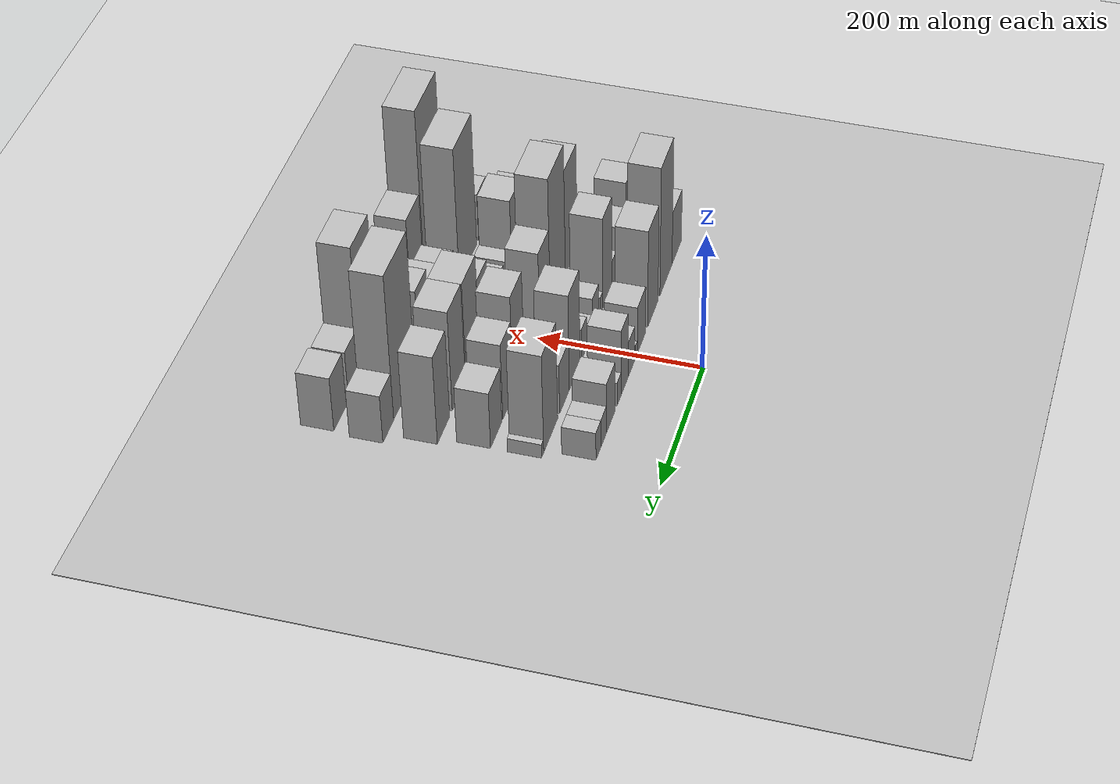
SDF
<sdf version="1.6">
 <world name="default">
  <include><name>ground_plane_1</name><uri>model://HANNAS_ground_plane</uri></include>
  <include>
   <name>ground_plane_2</name>
   <uri>model://HANNAS_ground_plane</uri>
   <pose>100 0 0  0 0 0</pose>
  </include>
  <model name="building_21">
   <static>1</static>
   <pose>100.0000 -192.4322 0 0.000000 0.000000 0.000000</pose>
   <link name="link">
    <pose>0 0 40.50 0 0 0</pose>
    <collision name="collision"><geometry><box><size>40.0000 46.7620 81.0000</size></box></geometry></collision>
    <visual name="visual">
     <cast_shadows>0</cast_shadows>
     <geometry><box><size>40.0000 46.7620 81.0000</size></box></geometry>
     <material>
      <script>
       <uri>model://HANNAS_wall/materials/scripts</uri>
       <uri>model://HANNAS_wall/materials/textures</uri>
       <name>vrc/HANNAS_wall</name>
      </script>
     </material>
    </visual>
   </link>
  </model>
  <model name="building_22">
   <static>1</static>
   <pose>100.0000 -139.3016 0 0.000000 0.000000 0.000000</pose>
   <link name="link">
    <pose>0 0 97.50 0 0 0</pose>
    <collision name="collision"><geometry><box><size>40.0000 59.4992 195.0000</size></box></geometry></collision>
    <visual name="visual">
     <cast_shadows>0</cast_shadows>
     <geometry><box><size>40.0000 59.4992 195.0000</size></box></geometry>
     <material>
      <script>
       <uri>model://HANNAS_wall/materials/scripts</uri>
       <uri>model://HANNAS_wall/materials/textures</uri>
       <name>vrc/HANNAS_wall</name>
      </script>
     </material>
    </visual>
   </link>
  </model>
  <model name="building_23">
   <static>1</static>
   <pose>100.0000 -75.8949 0 0.000000 0.000000 0.000000</pose>
   <link name="link">
    <pose>0 0 73.50 0 0 0</pose>
    <collision name="collision"><geometry><box><size>40.0000 49.3142 147.0000</size></box></geometry></collision>
    <visual name="visual">
     <cast_shadows>0</cast_shadows>
     <geometry><box><size>40.0000 49.3142 147.0000</size></box></geometry>
     <material>
      <script>
       <uri>model://HANNAS_wall/materials/scripts</uri>
       <uri>model://HANNAS_wall/materials/textures</uri>
       <name>vrc/HANNAS_wall</name>
      </script>
     </material>
    </visual>
   </link>
  </model>
  <model name="building_24">
   <static>1</static>
   <pose>100.0000 -21.9585 0 0.000000 0.000000 0.000000</pose>
   <link name="link">
    <pose>0 0 36.00 0 0 0</pose>
    <collision name="collision"><geometry><box><size>40.0000 38.5585 72.0000</size></box></geometry></collision>
    <visual name="visual">
     <cast_shadows>0</cast_shadows>
     <geometry><box><size>40.0000 38.5585 72.0000</size></box></geometry>
     <material>
      <script>
       <uri>model://HANNAS_wall/materials/scripts</uri>
       <uri>model://HANNAS_wall/materials/textures</uri>
       <name>vrc/HANNAS_wall</name>
      </script>
     </material>
    </visual>
   </link>
  </model>
  <model name="building_25">
   <static>1</static>
   <pose>100.0000 1.7301 0 0.000000 0.000000 0.000000</pose>
   <link name="link">
    <pose>0 0 10.50 0 0 0</pose>
    <collision name="collision"><geometry><box><size>40.0000 8.8189 21.0000</size></box></geometry></collision>
    <visual name="visual">
     <cast_shadows>0</cast_shadows>
     <geometry><box><size>40.0000 8.8189 21.0000</size></box></geometry>
     <material>
      <script>
       <uri>model://HANNAS_wall/materials/scripts</uri>
       <uri>model://HANNAS_wall/materials/textures</uri>
       <name>vrc/HANNAS_wall</name>
      </script>
     </material>
    </visual>
   </link>
  </model>
  <model name="building_26">
   <static>1</static>
   <pose>100.0000 24.4801 0 0.000000 0.000000 0.000000</pose>
   <link name="link">
    <pose>0 0 27.00 0 0 0</pose>
    <collision name="collision"><geometry><box><size>40.0000 30.6811 54.0000</size></box></geometry></collision>
    <visual name="visual">
     <cast_shadows>0</cast_shadows>
     <geometry><box><size>40.0000 30.6811 54.0000</size></box></geometry>
     <material>
      <script>
       <uri>model://HANNAS_wall/materials/scripts</uri>
       <uri>model://HANNAS_wall/materials/textures</uri>
       <name>vrc/HANNAS_wall</name>
      </script>
     </material>
    </visual>
   </link>
  </model>
  <model name="building_27">
   <static>1</static>
   <pose>100.0000 55.2419 0 0.000000 0.000000 0.000000</pose>
   <link name="link">
    <pose>0 0 49.50 0 0 0</pose>
    <collision name="collision"><geometry><box><size>40.0000 30.8425 99.0000</size></box></geometry></collision>
    <visual name="visual">
     <cast_shadows>0</cast_shadows>
     <geometry><box><size>40.0000 30.8425 99.0000</size></box></geometry>
     <material>
      <script>
       <uri>model://HANNAS_wall/materials/scripts</uri>
       <uri>model://HANNAS_wall/materials/textures</uri>
       <name>vrc/HANNAS_wall</name>
      </script>
     </material>
    </visual>
   </link>
  </model>
  <model name="building_28">
   <static>1</static>
   <pose>100.0000 79.9134 0 0.000000 0.000000 0.000000</pose>
   <link name="link">
    <pose>0 0 18.00 0 0 0</pose>
    <collision name="collision"><geometry><box><size>40.0000 18.5005 36.0000</size></box></geometry></collision>
    <visual name="visual">
     <cast_shadows>0</cast_shadows>
     <geometry><box><size>40.0000 18.5005 36.0000</size></box></geometry>
     <material>
      <script>
       <uri>model://HANNAS_wall/materials/scripts</uri>
       <uri>model://HANNAS_wall/materials/textures</uri>
       <name>vrc/HANNAS_wall</name>
      </script>
     </material>
    </visual>
   </link>
  </model>
  <model name="building_29">
   <static>1</static>
   <pose>100.0000 116.2037 0 0.000000 0.000000 0.000000</pose>
   <link name="link">
    <pose>0 0 37.50 0 0 0</pose>
    <collision name="collision"><geometry><box><size>40.0000 38.0802 75.0000</size></box></geometry></collision>
    <visual name="visual">
     <cast_shadows>0</cast_shadows>
     <geometry><box><size>40.0000 38.0802 75.0000</size></box></geometry>
     <material>
      <script>
       <uri>model://HANNAS_wall/materials/scripts</uri>
       <uri>model://HANNAS_wall/materials/textures</uri>
       <name>vrc/HANNAS_wall</name>
      </script>
     </material>
    </visual>
   </link>
  </model>
  <model name="building_30">
   <static>1</static>
   <pose>100.0000 147.2831 0 0.000000 0.000000 0.000000</pose>
   <link name="link">
    <pose>0 0 21.00 0 0 0</pose>
    <collision name="collision"><geometry><box><size>40.0000 24.0786 42.0000</size></box></geometry></collision>
    <visual name="visual">
     <cast_shadows>0</cast_shadows>
     <geometry><box><size>40.0000 24.0786 42.0000</size></box></geometry>
     <material>
      <script>
       <uri>model://HANNAS_wall/materials/scripts</uri>
       <uri>model://HANNAS_wall/materials/textures</uri>
       <name>vrc/HANNAS_wall</name>
      </script>
     </material>
    </visual>
   </link>
  </model>
  <model name="building_31">
   <static>1</static>
   <pose>100.0000 170.0176 0 0.000000 0.000000 0.000000</pose>
   <link name="link">
    <pose>0 0 21.00 0 0 0</pose>
    <collision name="collision"><geometry><box><size>40.0000 21.3902 42.0000</size></box></geometry></collision>
    <visual name="visual">
     <cast_shadows>0</cast_shadows>
     <geometry><box><size>40.0000 21.3902 42.0000</size></box></geometry>
     <material>
      <script>
       <uri>model://HANNAS_wall/materials/scripts</uri>
       <uri>model://HANNAS_wall/materials/textures</uri>
       <name>vrc/HANNAS_wall</name>
      </script>
     </material>
    </visual>
   </link>
  </model>
  <model name="building_76">
   <static>1</static>
   <pose>160.0000 -196.6930 0 0.000000 0.000000 0.000000</pose>
   <link name="link">
    <pose>0 0 54.00 0 0 0</pose>
    <collision name="collision"><geometry><box><size>40.0000 37.9832 108.0000</size></box></geometry></collision>
    <visual name="visual">
     <cast_shadows>0</cast_shadows>
     <geometry><box><size>40.0000 37.9832 108.0000</size></box></geometry>
     <material>
      <script>
       <uri>model://HANNAS_wall/materials/scripts</uri>
       <uri>model://HANNAS_wall/materials/textures</uri>
       <name>vrc/HANNAS_wall</name>
      </script>
     </material>
    </visual>
   </link>
  </model>
  <model name="building_77">
   <static>1</static>
   <pose>160.0000 -152.7159 0 0.000000 0.000000 0.000000</pose>
   <link name="link">
    <pose>0 0 37.50 0 0 0</pose>
    <collision name="collision"><geometry><box><size>40.0000 39.9711 75.0000</size></box></geometry></collision>
    <visual name="visual">
     <cast_shadows>0</cast_shadows>
     <geometry><box><size>40.0000 39.9711 75.0000</size></box></geometry>
     <material>
      <script>
       <uri>model://HANNAS_wall/materials/scripts</uri>
       <uri>model://HANNAS_wall/materials/textures</uri>
       <name>vrc/HANNAS_wall</name>
      </script>
     </material>
    </visual>
   </link>
  </model>
  <model name="building_78">
   <static>1</static>
   <pose>160.0000 -122.4921 0 0.000000 0.000000 0.000000</pose>
   <link name="link">
    <pose>0 0 19.50 0 0 0</pose>
    <collision name="collision"><geometry><box><size>40.0000 20.4765 39.0000</size></box></geometry></collision>
    <visual name="visual">
     <cast_shadows>0</cast_shadows>
     <geometry><box><size>40.0000 20.4765 39.0000</size></box></geometry>
     <material>
      <script>
       <uri>model://HANNAS_wall/materials/scripts</uri>
       <uri>model://HANNAS_wall/materials/textures</uri>
       <name>vrc/HANNAS_wall</name>
      </script>
     </material>
    </visual>
   </link>
  </model>
  <model name="building_79">
   <static>1</static>
   <pose>160.0000 -91.2231 0 0.000000 0.000000 0.000000</pose>
   <link name="link">
    <pose>0 0 69.00 0 0 0</pose>
    <collision name="collision"><geometry><box><size>40.0000 42.0614 138.0000</size></box></geometry></collision>
    <visual name="visual">
     <cast_shadows>0</cast_shadows>
     <geometry><box><size>40.0000 42.0614 138.0000</size></box></geometry>
     <material>
      <script>
       <uri>model://HANNAS_wall/materials/scripts</uri>
       <uri>model://HANNAS_wall/materials/textures</uri>
       <name>vrc/HANNAS_wall</name>
      </script>
     </material>
    </visual>
   </link>
  </model>
  <model name="building_80">
   <static>1</static>
   <pose>160.0000 -64.3996 0 0.000000 0.000000 0.000000</pose>
   <link name="link">
    <pose>0 0 13.50 0 0 0</pose>
    <collision name="collision"><geometry><box><size>40.0000 11.5857 27.0000</size></box></geometry></collision>
    <visual name="visual">
     <cast_shadows>0</cast_shadows>
     <geometry><box><size>40.0000 11.5857 27.0000</size></box></geometry>
     <material>
      <script>
       <uri>model://HANNAS_wall/materials/scripts</uri>
       <uri>model://HANNAS_wall/materials/textures</uri>
       <name>vrc/HANNAS_wall</name>
      </script>
     </material>
    </visual>
   </link>
  </model>
  <model name="building_81">
   <static>1</static>
   <pose>160.0000 -37.5981 0 0.000000 0.000000 0.000000</pose>
   <link name="link">
    <pose>0 0 27.00 0 0 0</pose>
    <collision name="collision"><geometry><box><size>40.0000 28.0174 54.0000</size></box></geometry></collision>
    <visual name="visual">
     <cast_shadows>0</cast_shadows>
     <geometry><box><size>40.0000 28.0174 54.0000</size></box></geometry>
     <material>
      <script>
       <uri>model://HANNAS_wall/materials/scripts</uri>
       <uri>model://HANNAS_wall/materials/textures</uri>
       <name>vrc/HANNAS_wall</name>
      </script>
     </material>
    </visual>
   </link>
  </model>
  <model name="building_82">
   <static>1</static>
   <pose>160.0000 -15.8726 0 0.000000 0.000000 0.000000</pose>
   <link name="link">
    <pose>0 0 15.00 0 0 0</pose>
    <collision name="collision"><geometry><box><size>40.0000 15.4336 30.0000</size></box></geometry></collision>
    <visual name="visual">
     <cast_shadows>0</cast_shadows>
     <geometry><box><size>40.0000 15.4336 30.0000</size></box></geometry>
     <material>
      <script>
       <uri>model://HANNAS_wall/materials/scripts</uri>
       <uri>model://HANNAS_wall/materials/textures</uri>
       <name>vrc/HANNAS_wall</name>
      </script>
     </material>
    </visual>
   </link>
  </model>
  <model name="building_83">
   <static>1</static>
   <pose>160.0000 13.0818 0 0.000000 0.000000 0.000000</pose>
   <link name="link">
    <pose>0 0 24.00 0 0 0</pose>
    <collision name="collision"><geometry><box><size>40.0000 24.4751 48.0000</size></box></geometry></collision>
    <visual name="visual">
     <cast_shadows>0</cast_shadows>
     <geometry><box><size>40.0000 24.4751 48.0000</size></box></geometry>
     <material>
      <script>
       <uri>model://HANNAS_wall/materials/scripts</uri>
       <uri>model://HANNAS_wall/materials/textures</uri>
       <name>vrc/HANNAS_wall</name>
      </script>
     </material>
    </visual>
   </link>
  </model>
  <model name="building_84">
   <static>1</static>
   <pose>160.0000 54.4491 0 0.000000 0.000000 0.000000</pose>
   <link name="link">
    <pose>0 0 72.00 0 0 0</pose>
    <collision name="collision"><geometry><box><size>40.0000 46.2595 144.0000</size></box></geometry></collision>
    <visual name="visual">
     <cast_shadows>0</cast_shadows>
     <geometry><box><size>40.0000 46.2595 144.0000</size></box></geometry>
     <material>
      <script>
       <uri>model://HANNAS_wall/materials/scripts</uri>
       <uri>model://HANNAS_wall/materials/textures</uri>
       <name>vrc/HANNAS_wall</name>
      </script>
     </material>
    </visual>
   </link>
  </model>
  <model name="building_85">
   <static>1</static>
   <pose>160.0000 98.1941 0 0.000000 0.000000 0.000000</pose>
   <link name="link">
    <pose>0 0 37.50 0 0 0</pose>
    <collision name="collision"><geometry><box><size>40.0000 41.2305 75.0000</size></box></geometry></collision>
    <visual name="visual">
     <cast_shadows>0</cast_shadows>
     <geometry><box><size>40.0000 41.2305 75.0000</size></box></geometry>
     <material>
      <script>
       <uri>model://HANNAS_wall/materials/scripts</uri>
       <uri>model://HANNAS_wall/materials/textures</uri>
       <name>vrc/HANNAS_wall</name>
      </script>
     </material>
    </visual>
   </link>
  </model>
  <model name="building_86">
   <static>1</static>
   <pose>160.0000 155.6884 0 0.000000 0.000000 0.000000</pose>
   <link name="link">
    <pose>0 0 73.50 0 0 0</pose>
    <collision name="collision"><geometry><box><size>40.0000 57.7581 147.0000</size></box></geometry></collision>
    <visual name="visual">
     <cast_shadows>0</cast_shadows>
     <geometry><box><size>40.0000 57.7581 147.0000</size></box></geometry>
     <material>
      <script>
       <uri>model://HANNAS_wall/materials/scripts</uri>
       <uri>model://HANNAS_wall/materials/textures</uri>
       <name>vrc/HANNAS_wall</name>
      </script>
     </material>
    </visual>
   </link>
  </model>
  <model name="building_87">
   <static>1</static>
   <pose>160.0000 188.8410 0 0.000000 0.000000 0.000000</pose>
   <link name="link">
    <pose>0 0 10.50 0 0 0</pose>
    <collision name="collision"><geometry><box><size>40.0000 8.5471 21.0000</size></box></geometry></collision>
    <visual name="visual">
     <cast_shadows>0</cast_shadows>
     <geometry><box><size>40.0000 8.5471 21.0000</size></box></geometry>
     <material>
      <script>
       <uri>model://HANNAS_wall/materials/scripts</uri>
       <uri>model://HANNAS_wall/materials/textures</uri>
       <name>vrc/HANNAS_wall</name>
      </script>
     </material>
    </visual>
   </link>
  </model>
  <model name="building_134">
   <static>1</static>
   <pose>220.0000 -193.3885 0 0.000000 0.000000 0.000000</pose>
   <link name="link">
    <pose>0 0 25.50 0 0 0</pose>
    <collision name="collision"><geometry><box><size>40.0000 30.3511 51.0000</size></box></geometry></collision>
    <visual name="visual">
     <cast_shadows>0</cast_shadows>
     <geometry><box><size>40.0000 30.3511 51.0000</size></box></geometry>
     <material>
      <script>
       <uri>model://HANNAS_wall/materials/scripts</uri>
       <uri>model://HANNAS_wall/materials/textures</uri>
       <name>vrc/HANNAS_wall</name>
      </script>
     </material>
    </visual>
   </link>
  </model>
  <model name="building_135">
   <static>1</static>
   <pose>220.0000 -175.0281 0 0.000000 0.000000 0.000000</pose>
   <link name="link">
    <pose>0 0 7.50 0 0 0</pose>
    <collision name="collision"><geometry><box><size>40.0000 6.3698 15.0000</size></box></geometry></collision>
    <visual name="visual">
     <cast_shadows>0</cast_shadows>
     <geometry><box><size>40.0000 6.3698 15.0000</size></box></geometry>
     <material>
      <script>
       <uri>model://HANNAS_wall/materials/scripts</uri>
       <uri>model://HANNAS_wall/materials/textures</uri>
       <name>vrc/HANNAS_wall</name>
      </script>
     </material>
    </visual>
   </link>
  </model>
  <model name="building_136">
   <static>1</static>
   <pose>220.0000 -145.3822 0 0.000000 0.000000 0.000000</pose>
   <link name="link">
    <pose>0 0 79.50 0 0 0</pose>
    <collision name="collision"><geometry><box><size>40.0000 52.9220 159.0000</size></box></geometry></collision>
    <visual name="visual">
     <cast_shadows>0</cast_shadows>
     <geometry><box><size>40.0000 52.9220 159.0000</size></box></geometry>
     <material>
      <script>
       <uri>model://HANNAS_wall/materials/scripts</uri>
       <uri>model://HANNAS_wall/materials/textures</uri>
       <name>vrc/HANNAS_wall</name>
      </script>
     </material>
    </visual>
   </link>
  </model>
  <model name="building_137">
   <static>1</static>
   <pose>220.0000 -85.6703 0 0.000000 0.000000 0.000000</pose>
   <link name="link">
    <pose>0 0 99.00 0 0 0</pose>
    <collision name="collision"><geometry><box><size>40.0000 66.5017 198.0000</size></box></geometry></collision>
    <visual name="visual">
     <cast_shadows>0</cast_shadows>
     <geometry><box><size>40.0000 66.5017 198.0000</size></box></geometry>
     <material>
      <script>
       <uri>model://HANNAS_wall/materials/scripts</uri>
       <uri>model://HANNAS_wall/materials/textures</uri>
       <name>vrc/HANNAS_wall</name>
      </script>
     </material>
    </visual>
   </link>
  </model>
  <model name="building_138">
   <static>1</static>
   <pose>220.0000 -29.9982 0 0.000000 0.000000 0.000000</pose>
   <link name="link">
    <pose>0 0 61.50 0 0 0</pose>
    <collision name="collision"><geometry><box><size>40.0000 44.8425 123.0000</size></box></geometry></collision>
    <visual name="visual">
     <cast_shadows>0</cast_shadows>
     <geometry><box><size>40.0000 44.8425 123.0000</size></box></geometry>
     <material>
      <script>
       <uri>model://HANNAS_wall/materials/scripts</uri>
       <uri>model://HANNAS_wall/materials/textures</uri>
       <name>vrc/HANNAS_wall</name>
      </script>
     </material>
    </visual>
   </link>
  </model>
  <model name="building_139">
   <static>1</static>
   <pose>220.0000 7.7298 0 0.000000 0.000000 0.000000</pose>
   <link name="link">
    <pose>0 0 13.50 0 0 0</pose>
    <collision name="collision"><geometry><box><size>40.0000 12.6136 27.0000</size></box></geometry></collision>
    <visual name="visual">
     <cast_shadows>0</cast_shadows>
     <geometry><box><size>40.0000 12.6136 27.0000</size></box></geometry>
     <material>
      <script>
       <uri>model://HANNAS_wall/materials/scripts</uri>
       <uri>model://HANNAS_wall/materials/textures</uri>
       <name>vrc/HANNAS_wall</name>
      </script>
     </material>
    </visual>
   </link>
  </model>
  <model name="building_140">
   <static>1</static>
   <pose>220.0000 18.9061 0 0.000000 0.000000 0.000000</pose>
   <link name="link">
    <pose>0 0 10.50 0 0 0</pose>
    <collision name="collision"><geometry><box><size>40.0000 9.7389 21.0000</size></box></geometry></collision>
    <visual name="visual">
     <cast_shadows>0</cast_shadows>
     <geometry><box><size>40.0000 9.7389 21.0000</size></box></geometry>
     <material>
      <script>
       <uri>model://HANNAS_wall/materials/scripts</uri>
       <uri>model://HANNAS_wall/materials/textures</uri>
       <name>vrc/HANNAS_wall</name>
      </script>
     </material>
    </visual>
   </link>
  </model>
  <model name="building_141">
   <static>1</static>
   <pose>220.0000 44.9950 0 0.000000 0.000000 0.000000</pose>
   <link name="link">
    <pose>0 0 21.00 0 0 0</pose>
    <collision name="collision"><geometry><box><size>40.0000 24.4390 42.0000</size></box></geometry></collision>
    <visual name="visual">
     <cast_shadows>0</cast_shadows>
     <geometry><box><size>40.0000 24.4390 42.0000</size></box></geometry>
     <material>
      <script>
       <uri>model://HANNAS_wall/materials/scripts</uri>
       <uri>model://HANNAS_wall/materials/textures</uri>
       <name>vrc/HANNAS_wall</name>
      </script>
     </material>
    </visual>
   </link>
  </model>
  <model name="building_142">
   <static>1</static>
   <pose>220.0000 80.0974 0 0.000000 0.000000 0.000000</pose>
   <link name="link">
    <pose>0 0 75.00 0 0 0</pose>
    <collision name="collision"><geometry><box><size>40.0000 45.7659 150.0000</size></box></geometry></collision>
    <visual name="visual">
     <cast_shadows>0</cast_shadows>
     <geometry><box><size>40.0000 45.7659 150.0000</size></box></geometry>
     <material>
      <script>
       <uri>model://HANNAS_wall/materials/scripts</uri>
       <uri>model://HANNAS_wall/materials/textures</uri>
       <name>vrc/HANNAS_wall</name>
      </script>
     </material>
    </visual>
   </link>
  </model>
  <model name="building_143">
   <static>1</static>
   <pose>220.0000 123.7399 0 0.000000 0.000000 0.000000</pose>
   <link name="link">
    <pose>0 0 57.00 0 0 0</pose>
    <collision name="collision"><geometry><box><size>40.0000 41.5192 114.0000</size></box></geometry></collision>
    <visual name="visual">
     <cast_shadows>0</cast_shadows>
     <geometry><box><size>40.0000 41.5192 114.0000</size></box></geometry>
     <material>
      <script>
       <uri>model://HANNAS_wall/materials/scripts</uri>
       <uri>model://HANNAS_wall/materials/textures</uri>
       <name>vrc/HANNAS_wall</name>
      </script>
     </material>
    </visual>
   </link>
  </model>
  <model name="building_144">
   <static>1</static>
   <pose>220.0000 170.6851 0 0.000000 0.000000 0.000000</pose>
   <link name="link">
    <pose>0 0 42.00 0 0 0</pose>
    <collision name="collision"><geometry><box><size>40.0000 44.3712 84.0000</size></box></geometry></collision>
    <visual name="visual">
     <cast_shadows>0</cast_shadows>
     <geometry><box><size>40.0000 44.3712 84.0000</size></box></geometry>
     <material>
      <script>
       <uri>model://HANNAS_wall/materials/scripts</uri>
       <uri>model://HANNAS_wall/materials/textures</uri>
       <name>vrc/HANNAS_wall</name>
      </script>
     </material>
    </visual>
   </link>
  </model>
  <model name="building_185">
   <static>1</static>
   <pose>280.0000 -162.9202 0 0.000000 0.000000 0.000000</pose>
   <link name="link">
    <pose>0 0 46.50 0 0 0</pose>
    <collision name="collision"><geometry><box><size>40.0000 32.3600 93.0000</size></box></geometry></collision>
    <visual name="visual">
     <cast_shadows>0</cast_shadows>
     <geometry><box><size>40.0000 32.3600 93.0000</size></box></geometry>
     <material>
      <script>
       <uri>model://HANNAS_wall/materials/scripts</uri>
       <uri>model://HANNAS_wall/materials/textures</uri>
       <name>vrc/HANNAS_wall</name>
      </script>
     </material>
    </visual>
   </link>
  </model>
  <model name="building_186">
   <static>1</static>
   <pose>280.0000 -117.2008 0 0.000000 0.000000 0.000000</pose>
   <link name="link">
    <pose>0 0 60.00 0 0 0</pose>
    <collision name="collision"><geometry><box><size>40.0000 45.0787 120.0000</size></box></geometry></collision>
    <visual name="visual">
     <cast_shadows>0</cast_shadows>
     <geometry><box><size>40.0000 45.0787 120.0000</size></box></geometry>
     <material>
      <script>
       <uri>model://HANNAS_wall/materials/scripts</uri>
       <uri>model://HANNAS_wall/materials/textures</uri>
       <name>vrc/HANNAS_wall</name>
      </script>
     </material>
    </visual>
   </link>
  </model>
  <model name="building_187">
   <static>1</static>
   <pose>280.0000 -83.3864 0 0.000000 0.000000 0.000000</pose>
   <link name="link">
    <pose>0 0 22.50 0 0 0</pose>
    <collision name="collision"><geometry><box><size>40.0000 22.5501 45.0000</size></box></geometry></collision>
    <visual name="visual">
     <cast_shadows>0</cast_shadows>
     <geometry><box><size>40.0000 22.5501 45.0000</size></box></geometry>
     <material>
      <script>
       <uri>model://HANNAS_wall/materials/scripts</uri>
       <uri>model://HANNAS_wall/materials/textures</uri>
       <name>vrc/HANNAS_wall</name>
      </script>
     </material>
    </visual>
   </link>
  </model>
  <model name="building_188">
   <static>1</static>
   <pose>280.0000 -50.0803 0 0.000000 0.000000 0.000000</pose>
   <link name="link">
    <pose>0 0 24.00 0 0 0</pose>
    <collision name="collision"><geometry><box><size>40.0000 24.0621 48.0000</size></box></geometry></collision>
    <visual name="visual">
     <cast_shadows>0</cast_shadows>
     <geometry><box><size>40.0000 24.0621 48.0000</size></box></geometry>
     <material>
      <script>
       <uri>model://HANNAS_wall/materials/scripts</uri>
       <uri>model://HANNAS_wall/materials/textures</uri>
       <name>vrc/HANNAS_wall</name>
      </script>
     </material>
    </visual>
   </link>
  </model>
  <model name="building_189">
   <static>1</static>
   <pose>280.0000 -16.7186 0 0.000000 0.000000 0.000000</pose>
   <link name="link">
    <pose>0 0 33.00 0 0 0</pose>
    <collision name="collision"><geometry><box><size>40.0000 34.6612 66.0000</size></box></geometry></collision>
    <visual name="visual">
     <cast_shadows>0</cast_shadows>
     <geometry><box><size>40.0000 34.6612 66.0000</size></box></geometry>
     <material>
      <script>
       <uri>model://HANNAS_wall/materials/scripts</uri>
       <uri>model://HANNAS_wall/materials/textures</uri>
       <name>vrc/HANNAS_wall</name>
      </script>
     </material>
    </visual>
   </link>
  </model>
  <model name="building_190">
   <static>1</static>
   <pose>280.0000 20.3184 0 0.000000 0.000000 0.000000</pose>
   <link name="link">
    <pose>0 0 54.00 0 0 0</pose>
    <collision name="collision"><geometry><box><size>40.0000 39.4128 108.0000</size></box></geometry></collision>
    <visual name="visual">
     <cast_shadows>0</cast_shadows>
     <geometry><box><size>40.0000 39.4128 108.0000</size></box></geometry>
     <material>
      <script>
       <uri>model://HANNAS_wall/materials/scripts</uri>
       <uri>model://HANNAS_wall/materials/textures</uri>
       <name>vrc/HANNAS_wall</name>
      </script>
     </material>
    </visual>
   </link>
  </model>
  <model name="building_191">
   <static>1</static>
   <pose>280.0000 66.0910 0 0.000000 0.000000 0.000000</pose>
   <link name="link">
    <pose>0 0 73.50 0 0 0</pose>
    <collision name="collision"><geometry><box><size>40.0000 52.1325 147.0000</size></box></geometry></collision>
    <visual name="visual">
     <cast_shadows>0</cast_shadows>
     <geometry><box><size>40.0000 52.1325 147.0000</size></box></geometry>
     <material>
      <script>
       <uri>model://HANNAS_wall/materials/scripts</uri>
       <uri>model://HANNAS_wall/materials/textures</uri>
       <name>vrc/HANNAS_wall</name>
      </script>
     </material>
    </visual>
   </link>
  </model>
  <model name="building_192">
   <static>1</static>
   <pose>280.0000 120.2849 0 0.000000 0.000000 0.000000</pose>
   <link name="link">
    <pose>0 0 75.00 0 0 0</pose>
    <collision name="collision"><geometry><box><size>40.0000 50.2553 150.0000</size></box></geometry></collision>
    <visual name="visual">
     <cast_shadows>0</cast_shadows>
     <geometry><box><size>40.0000 50.2553 150.0000</size></box></geometry>
     <material>
      <script>
       <uri>model://HANNAS_wall/materials/scripts</uri>
       <uri>model://HANNAS_wall/materials/textures</uri>
       <name>vrc/HANNAS_wall</name>
      </script>
     </material>
    </visual>
   </link>
  </model>
  <model name="building_193">
   <static>1</static>
   <pose>280.0000 178.6409 0 0.000000 0.000000 0.000000</pose>
   <link name="link">
    <pose>0 0 66.00 0 0 0</pose>
    <collision name="collision"><geometry><box><size>40.0000 46.4566 132.0000</size></box></geometry></collision>
    <visual name="visual">
     <cast_shadows>0</cast_shadows>
     <geometry><box><size>40.0000 46.4566 132.0000</size></box></geometry>
     <material>
      <script>
       <uri>model://HANNAS_wall/materials/scripts</uri>
       <uri>model://HANNAS_wall/materials/textures</uri>
       <name>vrc/HANNAS_wall</name>
      </script>
     </material>
    </visual>
   </link>
  </model>
  <model name="building_235">
   <static>1</static>
   <pose>340.0000 -171.4117 0 0.000000 0.000000 0.000000</pose>
   <link name="link">
    <pose>0 0 36.00 0 0 0</pose>
    <collision name="collision"><geometry><box><size>40.0000 37.1595 72.0000</size></box></geometry></collision>
    <visual name="visual">
     <cast_shadows>0</cast_shadows>
     <geometry><box><size>40.0000 37.1595 72.0000</size></box></geometry>
     <material>
      <script>
       <uri>model://HANNAS_wall/materials/scripts</uri>
       <uri>model://HANNAS_wall/materials/textures</uri>
       <name>vrc/HANNAS_wall</name>
      </script>
     </material>
    </visual>
   </link>
  </model>
  <model name="building_236">
   <static>1</static>
   <pose>340.0000 -109.2250 0 0.000000 0.000000 0.000000</pose>
   <link name="link">
    <pose>0 0 100.50 0 0 0</pose>
    <collision name="collision"><geometry><box><size>40.0000 71.2140 201.0000</size></box></geometry></collision>
    <visual name="visual">
     <cast_shadows>0</cast_shadows>
     <geometry><box><size>40.0000 71.2140 201.0000</size></box></geometry>
     <material>
      <script>
       <uri>model://HANNAS_wall/materials/scripts</uri>
       <uri>model://HANNAS_wall/materials/textures</uri>
       <name>vrc/HANNAS_wall</name>
      </script>
     </material>
    </visual>
   </link>
  </model>
  <model name="building_237">
   <static>1</static>
   <pose>340.0000 -61.5990 0 0.000000 0.000000 0.000000</pose>
   <link name="link">
    <pose>0 0 10.50 0 0 0</pose>
    <collision name="collision"><geometry><box><size>40.0000 10.0379 21.0000</size></box></geometry></collision>
    <visual name="visual">
     <cast_shadows>0</cast_shadows>
     <geometry><box><size>40.0000 10.0379 21.0000</size></box></geometry>
     <material>
      <script>
       <uri>model://HANNAS_wall/materials/scripts</uri>
       <uri>model://HANNAS_wall/materials/textures</uri>
       <name>vrc/HANNAS_wall</name>
      </script>
     </material>
    </visual>
   </link>
  </model>
  <model name="building_238">
   <static>1</static>
   <pose>340.0000 -38.9036 0 0.000000 0.000000 0.000000</pose>
   <link name="link">
    <pose>0 0 31.50 0 0 0</pose>
    <collision name="collision"><geometry><box><size>40.0000 35.3530 63.0000</size></box></geometry></collision>
    <visual name="visual">
     <cast_shadows>0</cast_shadows>
     <geometry><box><size>40.0000 35.3530 63.0000</size></box></geometry>
     <material>
      <script>
       <uri>model://HANNAS_wall/materials/scripts</uri>
       <uri>model://HANNAS_wall/materials/textures</uri>
       <name>vrc/HANNAS_wall</name>
      </script>
     </material>
    </visual>
   </link>
  </model>
  <model name="building_239">
   <static>1</static>
   <pose>340.0000 -4.9048 0 0.000000 0.000000 0.000000</pose>
   <link name="link">
    <pose>0 0 16.50 0 0 0</pose>
    <collision name="collision"><geometry><box><size>40.0000 18.6445 33.0000</size></box></geometry></collision>
    <visual name="visual">
     <cast_shadows>0</cast_shadows>
     <geometry><box><size>40.0000 18.6445 33.0000</size></box></geometry>
     <material>
      <script>
       <uri>model://HANNAS_wall/materials/scripts</uri>
       <uri>model://HANNAS_wall/materials/textures</uri>
       <name>vrc/HANNAS_wall</name>
      </script>
     </material>
    </visual>
   </link>
  </model>
  <model name="building_240">
   <static>1</static>
   <pose>340.0000 22.6875 0 0.000000 0.000000 0.000000</pose>
   <link name="link">
    <pose>0 0 46.50 0 0 0</pose>
    <collision name="collision"><geometry><box><size>40.0000 36.5401 93.0000</size></box></geometry></collision>
    <visual name="visual">
     <cast_shadows>0</cast_shadows>
     <geometry><box><size>40.0000 36.5401 93.0000</size></box></geometry>
     <material>
      <script>
       <uri>model://HANNAS_wall/materials/scripts</uri>
       <uri>model://HANNAS_wall/materials/textures</uri>
       <name>vrc/HANNAS_wall</name>
      </script>
     </material>
    </visual>
   </link>
  </model>
  <model name="building_241">
   <static>1</static>
   <pose>340.0000 61.6356 0 0.000000 0.000000 0.000000</pose>
   <link name="link">
    <pose>0 0 57.00 0 0 0</pose>
    <collision name="collision"><geometry><box><size>40.0000 41.3562 114.0000</size></box></geometry></collision>
    <visual name="visual">
     <cast_shadows>0</cast_shadows>
     <geometry><box><size>40.0000 41.3562 114.0000</size></box></geometry>
     <material>
      <script>
       <uri>model://HANNAS_wall/materials/scripts</uri>
       <uri>model://HANNAS_wall/materials/textures</uri>
       <name>vrc/HANNAS_wall</name>
      </script>
     </material>
    </visual>
   </link>
  </model>
  <model name="building_242">
   <static>1</static>
   <pose>340.0000 86.4959 0 0.000000 0.000000 0.000000</pose>
   <link name="link">
    <pose>0 0 9.00 0 0 0</pose>
    <collision name="collision"><geometry><box><size>40.0000 8.3644 18.0000</size></box></geometry></collision>
    <visual name="visual">
     <cast_shadows>0</cast_shadows>
     <geometry><box><size>40.0000 8.3644 18.0000</size></box></geometry>
     <material>
      <script>
       <uri>model://HANNAS_wall/materials/scripts</uri>
       <uri>model://HANNAS_wall/materials/textures</uri>
       <name>vrc/HANNAS_wall</name>
      </script>
     </material>
    </visual>
   </link>
  </model>
  <model name="building_243">
   <static>1</static>
   <pose>340.0000 137.2993 0 0.000000 0.000000 0.000000</pose>
   <link name="link">
    <pose>0 0 108.00 0 0 0</pose>
    <collision name="collision"><geometry><box><size>40.0000 79.2426 216.0000</size></box></geometry></collision>
    <visual name="visual">
     <cast_shadows>0</cast_shadows>
     <geometry><box><size>40.0000 79.2426 216.0000</size></box></geometry>
     <material>
      <script>
       <uri>model://HANNAS_wall/materials/scripts</uri>
       <uri>model://HANNAS_wall/materials/textures</uri>
       <name>vrc/HANNAS_wall</name>
      </script>
     </material>
    </visual>
   </link>
  </model>
  <model name="building_244">
   <static>1</static>
   <pose>340.0000 196.4431 0 0.000000 0.000000 0.000000</pose>
   <link name="link">
    <pose>0 0 36.00 0 0 0</pose>
    <collision name="collision"><geometry><box><size>40.0000 39.0450 72.0000</size></box></geometry></collision>
    <visual name="visual">
     <cast_shadows>0</cast_shadows>
     <geometry><box><size>40.0000 39.0450 72.0000</size></box></geometry>
     <material>
      <script>
       <uri>model://HANNAS_wall/materials/scripts</uri>
       <uri>model://HANNAS_wall/materials/textures</uri>
       <name>vrc/HANNAS_wall</name>
      </script>
     </material>
    </visual>
   </link>
  </model>
  <model name="building_288">
   <static>1</static>
   <pose>400.0000 -156.8706 0 0.000000 0.000000 0.000000</pose>
   <link name="link">
    <pose>0 0 106.50 0 0 0</pose>
    <collision name="collision"><geometry><box><size>40.0000 80.0954 213.0000</size></box></geometry></collision>
    <visual name="visual">
     <cast_shadows>0</cast_shadows>
     <geometry><box><size>40.0000 80.0954 213.0000</size></box></geometry>
     <material>
      <script>
       <uri>model://HANNAS_wall/materials/scripts</uri>
       <uri>model://HANNAS_wall/materials/textures</uri>
       <name>vrc/HANNAS_wall</name>
      </script>
     </material>
    </visual>
   </link>
  </model>
  <model name="building_289">
   <static>1</static>
   <pose>400.0000 -88.9068 0 0.000000 0.000000 0.000000</pose>
   <link name="link">
    <pose>0 0 45.00 0 0 0</pose>
    <collision name="collision"><geometry><box><size>40.0000 49.8323 90.0000</size></box></geometry></collision>
    <visual name="visual">
     <cast_shadows>0</cast_shadows>
     <geometry><box><size>40.0000 49.8323 90.0000</size></box></geometry>
     <material>
      <script>
       <uri>model://HANNAS_wall/materials/scripts</uri>
       <uri>model://HANNAS_wall/materials/textures</uri>
       <name>vrc/HANNAS_wall</name>
      </script>
     </material>
    </visual>
   </link>
  </model>
  <model name="building_290">
   <static>1</static>
   <pose>400.0000 -48.0106 0 0.000000 0.000000 0.000000</pose>
   <link name="link">
    <pose>0 0 21.00 0 0 0</pose>
    <collision name="collision"><geometry><box><size>40.0000 23.9601 42.0000</size></box></geometry></collision>
    <visual name="visual">
     <cast_shadows>0</cast_shadows>
     <geometry><box><size>40.0000 23.9601 42.0000</size></box></geometry>
     <material>
      <script>
       <uri>model://HANNAS_wall/materials/scripts</uri>
       <uri>model://HANNAS_wall/materials/textures</uri>
       <name>vrc/HANNAS_wall</name>
      </script>
     </material>
    </visual>
   </link>
  </model>
  <model name="building_291">
   <static>1</static>
   <pose>400.0000 -16.9332 0 0.000000 0.000000 0.000000</pose>
   <link name="link">
    <pose>0 0 16.50 0 0 0</pose>
    <collision name="collision"><geometry><box><size>40.0000 18.1946 33.0000</size></box></geometry></collision>
    <visual name="visual">
     <cast_shadows>0</cast_shadows>
     <geometry><box><size>40.0000 18.1946 33.0000</size></box></geometry>
     <material>
      <script>
       <uri>model://HANNAS_wall/materials/scripts</uri>
       <uri>model://HANNAS_wall/materials/textures</uri>
       <name>vrc/HANNAS_wall</name>
      </script>
     </material>
    </visual>
   </link>
  </model>
  <model name="building_292">
   <static>1</static>
   <pose>400.0000 8.0613 0 0.000000 0.000000 0.000000</pose>
   <link name="link">
    <pose>0 0 13.50 0 0 0</pose>
    <collision name="collision"><geometry><box><size>40.0000 11.7945 27.0000</size></box></geometry></collision>
    <visual name="visual">
     <cast_shadows>0</cast_shadows>
     <geometry><box><size>40.0000 11.7945 27.0000</size></box></geometry>
     <material>
      <script>
       <uri>model://HANNAS_wall/materials/scripts</uri>
       <uri>model://HANNAS_wall/materials/textures</uri>
       <name>vrc/HANNAS_wall</name>
      </script>
     </material>
    </visual>
   </link>
  </model>
  <model name="building_293">
   <static>1</static>
   <pose>400.0000 26.4789 0 0.000000 0.000000 0.000000</pose>
   <link name="link">
    <pose>0 0 18.00 0 0 0</pose>
    <collision name="collision"><geometry><box><size>40.0000 19.0407 36.0000</size></box></geometry></collision>
    <visual name="visual">
     <cast_shadows>0</cast_shadows>
     <geometry><box><size>40.0000 19.0407 36.0000</size></box></geometry>
     <material>
      <script>
       <uri>model://HANNAS_wall/materials/scripts</uri>
       <uri>model://HANNAS_wall/materials/textures</uri>
       <name>vrc/HANNAS_wall</name>
      </script>
     </material>
    </visual>
   </link>
  </model>
  <model name="building_294">
   <static>1</static>
   <pose>400.0000 46.5140 0 0.000000 0.000000 0.000000</pose>
   <link name="link">
    <pose>0 0 19.50 0 0 0</pose>
    <collision name="collision"><geometry><box><size>40.0000 21.0296 39.0000</size></box></geometry></collision>
    <visual name="visual">
     <cast_shadows>0</cast_shadows>
     <geometry><box><size>40.0000 21.0296 39.0000</size></box></geometry>
     <material>
      <script>
       <uri>model://HANNAS_wall/materials/scripts</uri>
       <uri>model://HANNAS_wall/materials/textures</uri>
       <name>vrc/HANNAS_wall</name>
      </script>
     </material>
    </visual>
   </link>
  </model>
  <model name="building_295">
   <static>1</static>
   <pose>400.0000 87.3081 0 0.000000 0.000000 0.000000</pose>
   <link name="link">
    <pose>0 0 97.50 0 0 0</pose>
    <collision name="collision"><geometry><box><size>40.0000 60.5585 195.0000</size></box></geometry></collision>
    <visual name="visual">
     <cast_shadows>0</cast_shadows>
     <geometry><box><size>40.0000 60.5585 195.0000</size></box></geometry>
     <material>
      <script>
       <uri>model://HANNAS_wall/materials/scripts</uri>
       <uri>model://HANNAS_wall/materials/textures</uri>
       <name>vrc/HANNAS_wall</name>
      </script>
     </material>
    </visual>
   </link>
  </model>
  <model name="building_296">
   <static>1</static>
   <pose>400.0000 139.0410 0 0.000000 0.000000 0.000000</pose>
   <link name="link">
    <pose>0 0 37.50 0 0 0</pose>
    <collision name="collision"><geometry><box><size>40.0000 42.9073 75.0000</size></box></geometry></collision>
    <visual name="visual">
     <cast_shadows>0</cast_shadows>
     <geometry><box><size>40.0000 42.9073 75.0000</size></box></geometry>
     <material>
      <script>
       <uri>model://HANNAS_wall/materials/scripts</uri>
       <uri>model://HANNAS_wall/materials/textures</uri>
       <name>vrc/HANNAS_wall</name>
      </script>
     </material>
    </visual>
   </link>
  </model>
  <model name="building_297">
   <static>1</static>
   <pose>400.0000 190.0882 0 0.000000 0.000000 0.000000</pose>
   <link name="link">
    <pose>0 0 40.50 0 0 0</pose>
    <collision name="collision"><geometry><box><size>40.0000 43.1872 81.0000</size></box></geometry></collision>
    <visual name="visual">
     <cast_shadows>0</cast_shadows>
     <geometry><box><size>40.0000 43.1872 81.0000</size></box></geometry>
     <material>
      <script>
       <uri>model://HANNAS_wall/materials/scripts</uri>
       <uri>model://HANNAS_wall/materials/textures</uri>
       <name>vrc/HANNAS_wall</name>
      </script>
     </material>
    </visual>
   </link>
  </model>
 </world>
</sdf>
